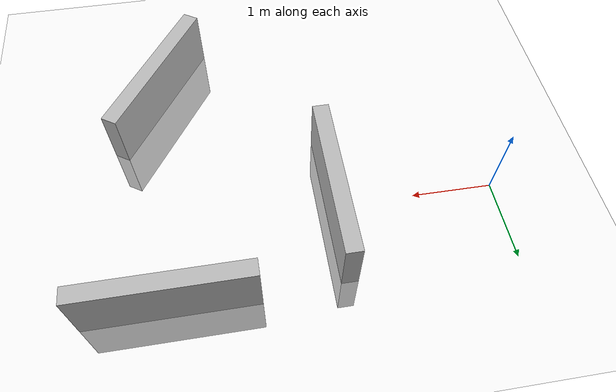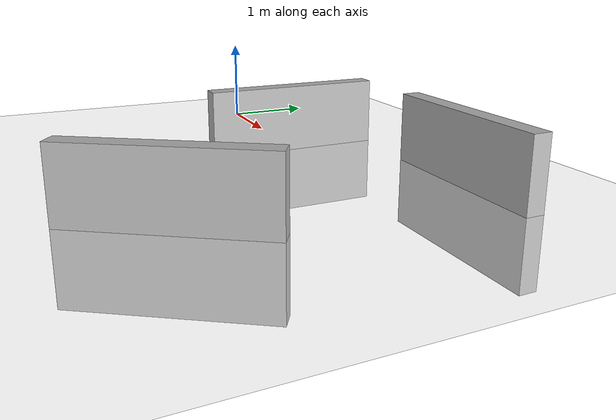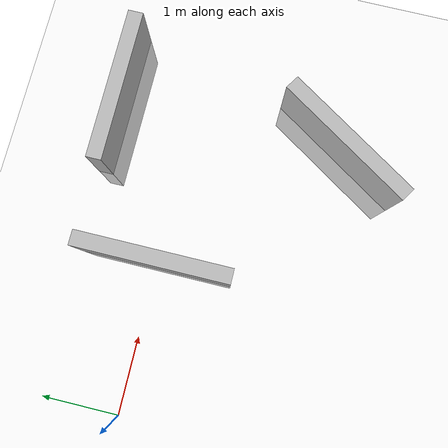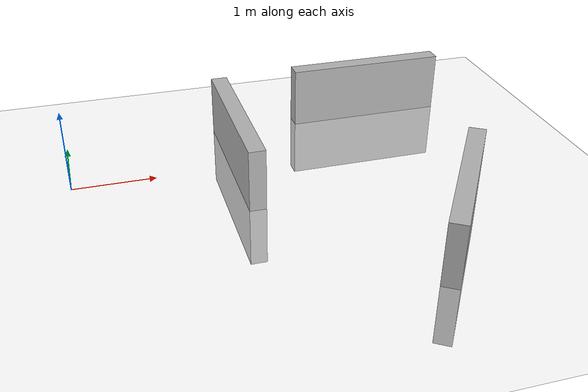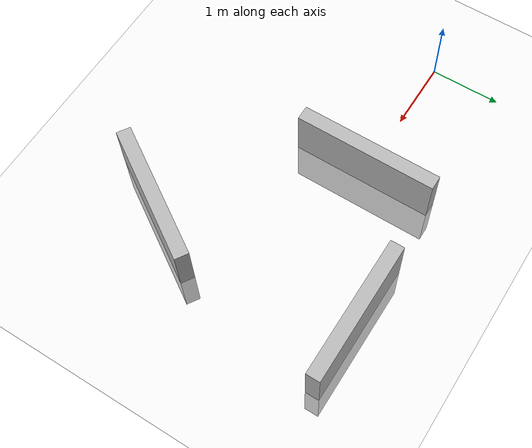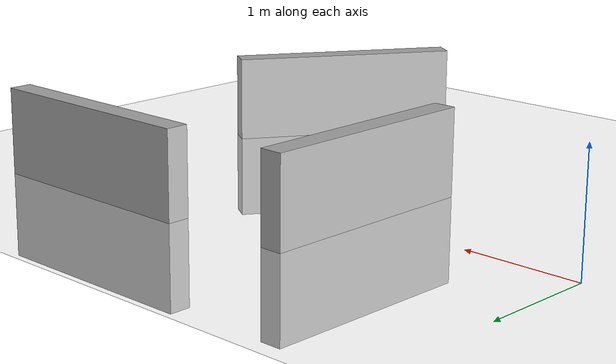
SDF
<?xml version="1.0" ?>
<sdf version="1.8">
  <world name="empty">
    <gravity>0 0 -9.81</gravity>

    <plugin
      filename="gz-sim-physics-system"
      name="gz::sim::systems::Physics"/>

    <plugin
      filename="gz-sim-user-commands-system"
      name="gz::sim::systems::UserCommands"/>

    <plugin
      filename="gz-sim-scene-broadcaster-system"
      name="gz::sim::systems::SceneBroadcaster"/>

    <plugin
      filename="gz-sim-sensors-system"
      name="gz::sim::systems::Sensors">
      <render_engine>ogre2</render_engine>
    </plugin>

    <light type="directional" name="sun">
      <cast_shadows>true</cast_shadows>
      <pose>0 0 10 0 0 0</pose>
      <diffuse>0.8 0.8 0.8 1</diffuse>
      <specular>0.2 0.2 0.2 1</specular>
      <direction>-0.5 0.1 -0.9</direction>
    </light>

    <model name="ground_plane">
      <static>true</static>
      <link name="link">
        <collision name="collision">
          <geometry>
            <plane>
              <normal>0 0 1</normal>
              <size>100 100</size>
            </plane>
          </geometry>
        </collision>
        <visual name="visual">
          <geometry>
            <plane>
              <normal>0 0 1</normal>
              <size>100 100</size>
            </plane>
          </geometry>
          <material>
            <ambient>0.92 0.92 0.92 1</ambient>
            <diffuse>0.96 0.96 0.96 1</diffuse>
            <specular>0.05 0.05 0.05 1</specular>
          </material>
        </visual>
      </link>
    </model>

  <include>
    <uri>model://2m_wall</uri>
    <name>parede_01</name>
    <pose>2 0 0 0 0 1.57</pose>
  </include>

  <include>
    <uri>model://2m_wall</uri>
    <name>parede_02</name>
    <pose>4 1 0 0 0 0</pose>
  </include>

  <include>
    <uri>model://2m_wall</uri>
    <name>parede_03</name>
    <pose>4 -2 0 0 0 1.</pose>
  </include>

  </world>
</sdf>

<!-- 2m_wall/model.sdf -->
<sdf version="1.6">
  <model name="parede_2m">
    <static>true</static>

    <pose>0 0 0.75 0 0 0</pose>

    <link name="link">
      <collision name="collision">
        <geometry>
          <box>
            <size>2 0.2 1.5</size>
          </box>
        </geometry>
      </collision>
      <visual name="visual">
        <geometry>
          <box>
            <size>2 0.2 1.5</size>
          </box>
        </geometry>
      </visual>
    </link>
  </model>
</sdf>
